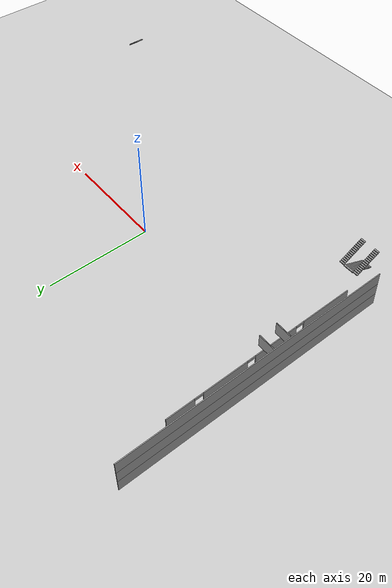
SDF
<sdf version="1.7">
 <world name="default">
  <model name="ground_plane">
   <static>1</static>
   <link name="link">
    <collision name="collision">
     <geometry><plane><normal>0 0 1</normal><size>100 100</size></plane></geometry>
     <surface><friction><ode><mu>100</mu><mu2>50</mu2></ode></friction></surface>
    </collision>
    <visual name="visual">
     <cast_shadows>0</cast_shadows>
     <geometry><plane><normal>0 0 1</normal><size>100 100</size></plane></geometry>
     <material>
      <script><uri>file://media/materials/scripts/gazebo.material</uri><name>Gazebo/Grey</name></script>
     </material>
    </visual>
   </link>
  </model>
  <model name="Anselm_Turmeda">
   <pose>-32.7988 -2.37459 0 0 -0 0</pose>
   <link name="Stairs_2">
    <visual name="Stairs_2_Visual_0">
     <pose>80.9114 -29.0014 2.58333 0 -0 -1.5708</pose>
     <geometry><box><size>1.48422 0.217333 0.166667</size></box></geometry>
     <material>
      <script><uri>file://media/materials/scripts/gazebo.material</uri><name>Gazebo/Grey</name></script>
      <ambient>1 1 1 1</ambient>
     </material>
     <meta><layer>1</layer></meta>
    </visual>
    <collision name="Stairs_2_Collision_0">
     <geometry><box><size>1.48422 0.217333 0.166667</size></box></geometry>
     <pose>80.9114 -29.0014 2.58333 0 -0 -1.5708</pose>
    </collision>
    <visual name="Stairs_2_Visual_1">
     <pose>80.694 -29.0014 2.75 0 -0 -1.5708</pose>
     <geometry><box><size>1.48422 0.217333 0.166667</size></box></geometry>
     <material>
      <script><uri>file://media/materials/scripts/gazebo.material</uri><name>Gazebo/Grey</name></script>
      <ambient>1 1 1 1</ambient>
     </material>
     <meta><layer>1</layer></meta>
    </visual>
    <collision name="Stairs_2_Collision_1">
     <geometry><box><size>1.48422 0.217333 0.166667</size></box></geometry>
     <pose>80.694 -29.0014 2.75 0 -0 -1.5708</pose>
    </collision>
    <visual name="Stairs_2_Visual_2">
     <pose>80.4767 -29.0014 2.91667 0 -0 -1.5708</pose>
     <geometry><box><size>1.48422 0.217333 0.166667</size></box></geometry>
     <material>
      <script><uri>file://media/materials/scripts/gazebo.material</uri><name>Gazebo/Grey</name></script>
      <ambient>1 1 1 1</ambient>
     </material>
     <meta><layer>1</layer></meta>
    </visual>
    <collision name="Stairs_2_Collision_2">
     <geometry><box><size>1.48422 0.217333 0.166667</size></box></geometry>
     <pose>80.4767 -29.0014 2.91667 0 -0 -1.5708</pose>
    </collision>
    <visual name="Stairs_2_Visual_3">
     <pose>80.2594 -29.0014 3.08333 0 -0 -1.5708</pose>
     <geometry><box><size>1.48422 0.217333 0.166667</size></box></geometry>
     <material>
      <script><uri>file://media/materials/scripts/gazebo.material</uri><name>Gazebo/Grey</name></script>
      <ambient>1 1 1 1</ambient>
     </material>
     <meta><layer>1</layer></meta>
    </visual>
    <collision name="Stairs_2_Collision_3">
     <geometry><box><size>1.48422 0.217333 0.166667</size></box></geometry>
     <pose>80.2594 -29.0014 3.08333 0 -0 -1.5708</pose>
    </collision>
    <visual name="Stairs_2_Visual_4">
     <pose>80.042 -29.0014 3.25 0 -0 -1.5708</pose>
     <geometry><box><size>1.48422 0.217333 0.166667</size></box></geometry>
     <material>
      <script><uri>file://media/materials/scripts/gazebo.material</uri><name>Gazebo/Grey</name></script>
      <ambient>1 1 1 1</ambient>
     </material>
     <meta><layer>1</layer></meta>
    </visual>
    <collision name="Stairs_2_Collision_4">
     <geometry><box><size>1.48422 0.217333 0.166667</size></box></geometry>
     <pose>80.042 -29.0014 3.25 0 -0 -1.5708</pose>
    </collision>
    <visual name="Stairs_2_Visual_5">
     <pose>79.8247 -29.0014 3.41667 0 -0 -1.5708</pose>
     <geometry><box><size>1.48422 0.217333 0.166667</size></box></geometry>
     <material>
      <script><uri>file://media/materials/scripts/gazebo.material</uri><name>Gazebo/Grey</name></script>
      <ambient>1 1 1 1</ambient>
     </material>
     <meta><layer>1</layer></meta>
    </visual>
    <collision name="Stairs_2_Collision_5">
     <geometry><box><size>1.48422 0.217333 0.166667</size></box></geometry>
     <pose>79.8247 -29.0014 3.41667 0 -0 -1.5708</pose>
    </collision>
    <visual name="Stairs_2_Visual_6">
     <pose>79.6074 -29.0014 3.58333 0 -0 -1.5708</pose>
     <geometry><box><size>1.48422 0.217333 0.166667</size></box></geometry>
     <material>
      <script><uri>file://media/materials/scripts/gazebo.material</uri><name>Gazebo/Grey</name></script>
      <ambient>1 1 1 1</ambient>
     </material>
     <meta><layer>1</layer></meta>
    </visual>
    <collision name="Stairs_2_Collision_6">
     <geometry><box><size>1.48422 0.217333 0.166667</size></box></geometry>
     <pose>79.6074 -29.0014 3.58333 0 -0 -1.5708</pose>
    </collision>
    <visual name="Stairs_2_Visual_7">
     <pose>79.39 -29.0014 3.75 0 -0 -1.5708</pose>
     <geometry><box><size>1.48422 0.217333 0.166667</size></box></geometry>
     <material>
      <script><uri>file://media/materials/scripts/gazebo.material</uri><name>Gazebo/Grey</name></script>
      <ambient>1 1 1 1</ambient>
     </material>
     <meta><layer>1</layer></meta>
    </visual>
    <collision name="Stairs_2_Collision_7">
     <geometry><box><size>1.48422 0.217333 0.166667</size></box></geometry>
     <pose>79.39 -29.0014 3.75 0 -0 -1.5708</pose>
    </collision>
    <visual name="Stairs_2_Visual_8">
     <pose>79.1727 -29.0014 3.91667 0 -0 -1.5708</pose>
     <geometry><box><size>1.48422 0.217333 0.166667</size></box></geometry>
     <material>
      <script><uri>file://media/materials/scripts/gazebo.material</uri><name>Gazebo/Grey</name></script>
      <ambient>1 1 1 1</ambient>
     </material>
     <meta><layer>1</layer></meta>
    </visual>
    <collision name="Stairs_2_Collision_8">
     <geometry><box><size>1.48422 0.217333 0.166667</size></box></geometry>
     <pose>79.1727 -29.0014 3.91667 0 -0 -1.5708</pose>
    </collision>
    <visual name="Stairs_2_Visual_9">
     <pose>78.9554 -29.0014 4.08333 0 -0 -1.5708</pose>
     <geometry><box><size>1.48422 0.217333 0.166667</size></box></geometry>
     <material>
      <script><uri>file://media/materials/scripts/gazebo.material</uri><name>Gazebo/Grey</name></script>
      <ambient>1 1 1 1</ambient>
     </material>
     <meta><layer>1</layer></meta>
    </visual>
    <collision name="Stairs_2_Collision_9">
     <geometry><box><size>1.48422 0.217333 0.166667</size></box></geometry>
     <pose>78.9554 -29.0014 4.08333 0 -0 -1.5708</pose>
    </collision>
    <visual name="Stairs_2_Visual_10">
     <pose>78.738 -29.0014 4.25 0 -0 -1.5708</pose>
     <geometry><box><size>1.48422 0.217333 0.166667</size></box></geometry>
     <material>
      <script><uri>file://media/materials/scripts/gazebo.material</uri><name>Gazebo/Grey</name></script>
      <ambient>1 1 1 1</ambient>
     </material>
     <meta><layer>1</layer></meta>
    </visual>
    <collision name="Stairs_2_Collision_10">
     <geometry><box><size>1.48422 0.217333 0.166667</size></box></geometry>
     <pose>78.738 -29.0014 4.25 0 -0 -1.5708</pose>
    </collision>
    <visual name="Stairs_2_Visual_11">
     <pose>78.5207 -29.0014 4.41667 0 -0 -1.5708</pose>
     <geometry><box><size>1.48422 0.217333 0.166667</size></box></geometry>
     <material>
      <script><uri>file://media/materials/scripts/gazebo.material</uri><name>Gazebo/Grey</name></script>
      <ambient>1 1 1 1</ambient>
     </material>
     <meta><layer>1</layer></meta>
    </visual>
    <collision name="Stairs_2_Collision_11">
     <geometry><box><size>1.48422 0.217333 0.166667</size></box></geometry>
     <pose>78.5207 -29.0014 4.41667 0 -0 -1.5708</pose>
    </collision>
    <visual name="Stairs_2_Visual_12">
     <pose>78.3034 -29.0014 4.58333 0 -0 -1.5708</pose>
     <geometry><box><size>1.48422 0.217333 0.166667</size></box></geometry>
     <material>
      <script><uri>file://media/materials/scripts/gazebo.material</uri><name>Gazebo/Grey</name></script>
      <ambient>1 1 1 1</ambient>
     </material>
     <meta><layer>1</layer></meta>
    </visual>
    <collision name="Stairs_2_Collision_12">
     <geometry><box><size>1.48422 0.217333 0.166667</size></box></geometry>
     <pose>78.3034 -29.0014 4.58333 0 -0 -1.5708</pose>
    </collision>
    <visual name="Stairs_2_Visual_13">
     <pose>78.086 -29.0014 4.75 0 -0 -1.5708</pose>
     <geometry><box><size>1.48422 0.217333 0.166667</size></box></geometry>
     <material>
      <script><uri>file://media/materials/scripts/gazebo.material</uri><name>Gazebo/Grey</name></script>
      <ambient>1 1 1 1</ambient>
     </material>
     <meta><layer>1</layer></meta>
    </visual>
    <collision name="Stairs_2_Collision_13">
     <geometry><box><size>1.48422 0.217333 0.166667</size></box></geometry>
     <pose>78.086 -29.0014 4.75 0 -0 -1.5708</pose>
    </collision>
    <visual name="Stairs_2_Visual_14">
     <pose>77.8687 -29.0014 4.91667 0 -0 -1.5708</pose>
     <geometry><box><size>1.48422 0.217333 0.166667</size></box></geometry>
     <material>
      <script><uri>file://media/materials/scripts/gazebo.material</uri><name>Gazebo/Grey</name></script>
      <ambient>1 1 1 1</ambient>
     </material>
     <meta><layer>1</layer></meta>
    </visual>
    <collision name="Stairs_2_Collision_14">
     <geometry><box><size>1.48422 0.217333 0.166667</size></box></geometry>
     <pose>77.8687 -29.0014 4.91667 0 -0 -1.5708</pose>
    </collision>
   </link>
   <link name="Stairs_5">
    <visual name="Stairs_5_Visual_0">
     <pose>2.14597 -23.0586 0.083333 0 -0 -3.14159</pose>
     <geometry><box><size>2.06288 0.339077 0.166667</size></box></geometry>
     <material>
      <script><uri>file://media/materials/scripts/gazebo.material</uri><name>Gazebo/Grey</name></script>
      <ambient>1 1 1 1</ambient>
     </material>
     <meta><layer>0</layer></meta>
    </visual>
    <collision name="Stairs_5_Collision_0">
     <geometry><box><size>2.06288 0.339077 0.166667</size></box></geometry>
     <pose>2.14597 -23.0586 0.083333 0 -0 -3.14159</pose>
    </collision>
    <visual name="Stairs_5_Visual_1">
     <pose>2.14597 -22.7195 0.25 0 -0 -3.14159</pose>
     <geometry><box><size>2.06288 0.339077 0.166667</size></box></geometry>
     <material>
      <script><uri>file://media/materials/scripts/gazebo.material</uri><name>Gazebo/Grey</name></script>
      <ambient>1 1 1 1</ambient>
     </material>
     <meta><layer>0</layer></meta>
    </visual>
    <collision name="Stairs_5_Collision_1">
     <geometry><box><size>2.06288 0.339077 0.166667</size></box></geometry>
     <pose>2.14597 -22.7195 0.25 0 -0 -3.14159</pose>
    </collision>
    <visual name="Stairs_5_Visual_2">
     <pose>2.14597 -22.3804 0.416667 0 -0 -3.14159</pose>
     <geometry><box><size>2.06288 0.339077 0.166667</size></box></geometry>
     <material>
      <script><uri>file://media/materials/scripts/gazebo.material</uri><name>Gazebo/Grey</name></script>
      <ambient>1 1 1 1</ambient>
     </material>
     <meta><layer>0</layer></meta>
    </visual>
    <collision name="Stairs_5_Collision_2">
     <geometry><box><size>2.06288 0.339077 0.166667</size></box></geometry>
     <pose>2.14597 -22.3804 0.416667 0 -0 -3.14159</pose>
    </collision>
    <visual name="Stairs_5_Visual_3">
     <pose>2.14597 -22.0414 0.583333 0 -0 -3.14159</pose>
     <geometry><box><size>2.06288 0.339077 0.166667</size></box></geometry>
     <material>
      <script><uri>file://media/materials/scripts/gazebo.material</uri><name>Gazebo/Grey</name></script>
      <ambient>1 1 1 1</ambient>
     </material>
     <meta><layer>0</layer></meta>
    </visual>
    <collision name="Stairs_5_Collision_3">
     <geometry><box><size>2.06288 0.339077 0.166667</size></box></geometry>
     <pose>2.14597 -22.0414 0.583333 0 -0 -3.14159</pose>
    </collision>
    <visual name="Stairs_5_Visual_4">
     <pose>2.14597 -21.7023 0.75 0 -0 -3.14159</pose>
     <geometry><box><size>2.06288 0.339077 0.166667</size></box></geometry>
     <material>
      <script><uri>file://media/materials/scripts/gazebo.material</uri><name>Gazebo/Grey</name></script>
      <ambient>1 1 1 1</ambient>
     </material>
     <meta><layer>0</layer></meta>
    </visual>
    <collision name="Stairs_5_Collision_4">
     <geometry><box><size>2.06288 0.339077 0.166667</size></box></geometry>
     <pose>2.14597 -21.7023 0.75 0 -0 -3.14159</pose>
    </collision>
    <visual name="Stairs_5_Visual_5">
     <pose>2.14597 -21.3632 0.916667 0 -0 -3.14159</pose>
     <geometry><box><size>2.06288 0.339077 0.166667</size></box></geometry>
     <material>
      <script><uri>file://media/materials/scripts/gazebo.material</uri><name>Gazebo/Grey</name></script>
      <ambient>1 1 1 1</ambient>
     </material>
     <meta><layer>0</layer></meta>
    </visual>
    <collision name="Stairs_5_Collision_5">
     <geometry><box><size>2.06288 0.339077 0.166667</size></box></geometry>
     <pose>2.14597 -21.3632 0.916667 0 -0 -3.14159</pose>
    </collision>
    <visual name="Stairs_5_Visual_6">
     <pose>2.14597 -21.0241 1.08333 0 -0 -3.14159</pose>
     <geometry><box><size>2.06288 0.339077 0.166667</size></box></geometry>
     <material>
      <script><uri>file://media/materials/scripts/gazebo.material</uri><name>Gazebo/Grey</name></script>
      <ambient>1 1 1 1</ambient>
     </material>
     <meta><layer>0</layer></meta>
    </visual>
    <collision name="Stairs_5_Collision_6">
     <geometry><box><size>2.06288 0.339077 0.166667</size></box></geometry>
     <pose>2.14597 -21.0241 1.08333 0 -0 -3.14159</pose>
    </collision>
    <visual name="Stairs_5_Visual_7">
     <pose>2.14597 -20.6851 1.25 0 -0 -3.14159</pose>
     <geometry><box><size>2.06288 0.339077 0.166667</size></box></geometry>
     <material>
      <script><uri>file://media/materials/scripts/gazebo.material</uri><name>Gazebo/Grey</name></script>
      <ambient>1 1 1 1</ambient>
     </material>
     <meta><layer>0</layer></meta>
    </visual>
    <collision name="Stairs_5_Collision_7">
     <geometry><box><size>2.06288 0.339077 0.166667</size></box></geometry>
     <pose>2.14597 -20.6851 1.25 0 -0 -3.14159</pose>
    </collision>
    <visual name="Stairs_5_Visual_8">
     <pose>2.14597 -20.346 1.41667 0 -0 -3.14159</pose>
     <geometry><box><size>2.06288 0.339077 0.166667</size></box></geometry>
     <material>
      <script><uri>file://media/materials/scripts/gazebo.material</uri><name>Gazebo/Grey</name></script>
      <ambient>1 1 1 1</ambient>
     </material>
     <meta><layer>0</layer></meta>
    </visual>
    <collision name="Stairs_5_Collision_8">
     <geometry><box><size>2.06288 0.339077 0.166667</size></box></geometry>
     <pose>2.14597 -20.346 1.41667 0 -0 -3.14159</pose>
    </collision>
    <visual name="Stairs_5_Visual_9">
     <pose>2.14597 -20.0069 1.58333 0 -0 -3.14159</pose>
     <geometry><box><size>2.06288 0.339077 0.166667</size></box></geometry>
     <material>
      <script><uri>file://media/materials/scripts/gazebo.material</uri><name>Gazebo/Grey</name></script>
      <ambient>1 1 1 1</ambient>
     </material>
     <meta><layer>0</layer></meta>
    </visual>
    <collision name="Stairs_5_Collision_9">
     <geometry><box><size>2.06288 0.339077 0.166667</size></box></geometry>
     <pose>2.14597 -20.0069 1.58333 0 -0 -3.14159</pose>
    </collision>
    <visual name="Stairs_5_Visual_10">
     <pose>2.14597 -19.6678 1.75 0 -0 -3.14159</pose>
     <geometry><box><size>2.06288 0.339077 0.166667</size></box></geometry>
     <material>
      <script><uri>file://media/materials/scripts/gazebo.material</uri><name>Gazebo/Grey</name></script>
      <ambient>1 1 1 1</ambient>
     </material>
     <meta><layer>0</layer></meta>
    </visual>
    <collision name="Stairs_5_Collision_10">
     <geometry><box><size>2.06288 0.339077 0.166667</size></box></geometry>
     <pose>2.14597 -19.6678 1.75 0 -0 -3.14159</pose>
    </collision>
    <visual name="Stairs_5_Visual_11">
     <pose>2.14597 -19.3288 1.91667 0 -0 -3.14159</pose>
     <geometry><box><size>2.06288 0.339077 0.166667</size></box></geometry>
     <material>
      <script><uri>file://media/materials/scripts/gazebo.material</uri><name>Gazebo/Grey</name></script>
      <ambient>1 1 1 1</ambient>
     </material>
     <meta><layer>0</layer></meta>
    </visual>
    <collision name="Stairs_5_Collision_11">
     <geometry><box><size>2.06288 0.339077 0.166667</size></box></geometry>
     <pose>2.14597 -19.3288 1.91667 0 -0 -3.14159</pose>
    </collision>
    <visual name="Stairs_5_Visual_12">
     <pose>2.14597 -18.9897 2.08333 0 -0 -3.14159</pose>
     <geometry><box><size>2.06288 0.339077 0.166667</size></box></geometry>
     <material>
      <script><uri>file://media/materials/scripts/gazebo.material</uri><name>Gazebo/Grey</name></script>
      <ambient>1 1 1 1</ambient>
     </material>
     <meta><layer>0</layer></meta>
    </visual>
    <collision name="Stairs_5_Collision_12">
     <geometry><box><size>2.06288 0.339077 0.166667</size></box></geometry>
     <pose>2.14597 -18.9897 2.08333 0 -0 -3.14159</pose>
    </collision>
    <visual name="Stairs_5_Visual_13">
     <pose>2.14597 -18.6506 2.25 0 -0 -3.14159</pose>
     <geometry><box><size>2.06288 0.339077 0.166667</size></box></geometry>
     <material>
      <script><uri>file://media/materials/scripts/gazebo.material</uri><name>Gazebo/Grey</name></script>
      <ambient>1 1 1 1</ambient>
     </material>
     <meta><layer>0</layer></meta>
    </visual>
    <collision name="Stairs_5_Collision_13">
     <geometry><box><size>2.06288 0.339077 0.166667</size></box></geometry>
     <pose>2.14597 -18.6506 2.25 0 -0 -3.14159</pose>
    </collision>
    <visual name="Stairs_5_Visual_14">
     <pose>2.14597 -18.3115 2.41667 0 -0 -3.14159</pose>
     <geometry><box><size>2.06288 0.339077 0.166667</size></box></geometry>
     <material>
      <script><uri>file://media/materials/scripts/gazebo.material</uri><name>Gazebo/Grey</name></script>
      <ambient>1 1 1 1</ambient>
     </material>
     <meta><layer>0</layer></meta>
    </visual>
    <collision name="Stairs_5_Collision_14">
     <geometry><box><size>2.06288 0.339077 0.166667</size></box></geometry>
     <pose>2.14597 -18.3115 2.41667 0 -0 -3.14159</pose>
    </collision>
   </link>
   <link name="Stairs_6">
    <visual name="Stairs_6_Visual_0">
     <pose>3.70173 -18.3144 2.58333 0 -0 0</pose>
     <geometry><box><size>1 0.332372 0.166667</size></box></geometry>
     <material>
      <script><uri>file://media/materials/scripts/gazebo.material</uri><name>Gazebo/Grey</name></script>
      <ambient>1 1 1 1</ambient>
     </material>
     <meta><layer>1</layer></meta>
    </visual>
    <collision name="Stairs_6_Collision_0">
     <geometry><box><size>1 0.332372 0.166667</size></box></geometry>
     <pose>3.70173 -18.3144 2.58333 0 -0 0</pose>
    </collision>
    <visual name="Stairs_6_Visual_1">
     <pose>3.70173 -18.6468 2.75 0 -0 0</pose>
     <geometry><box><size>1 0.332372 0.166667</size></box></geometry>
     <material>
      <script><uri>file://media/materials/scripts/gazebo.material</uri><name>Gazebo/Grey</name></script>
      <ambient>1 1 1 1</ambient>
     </material>
     <meta><layer>1</layer></meta>
    </visual>
    <collision name="Stairs_6_Collision_1">
     <geometry><box><size>1 0.332372 0.166667</size></box></geometry>
     <pose>3.70173 -18.6468 2.75 0 -0 0</pose>
    </collision>
    <visual name="Stairs_6_Visual_2">
     <pose>3.70173 -18.9792 2.91667 0 -0 0</pose>
     <geometry><box><size>1 0.332372 0.166667</size></box></geometry>
     <material>
      <script><uri>file://media/materials/scripts/gazebo.material</uri><name>Gazebo/Grey</name></script>
      <ambient>1 1 1 1</ambient>
     </material>
     <meta><layer>1</layer></meta>
    </visual>
    <collision name="Stairs_6_Collision_2">
     <geometry><box><size>1 0.332372 0.166667</size></box></geometry>
     <pose>3.70173 -18.9792 2.91667 0 -0 0</pose>
    </collision>
    <visual name="Stairs_6_Visual_3">
     <pose>3.70173 -19.3115 3.08333 0 -0 0</pose>
     <geometry><box><size>1 0.332372 0.166667</size></box></geometry>
     <material>
      <script><uri>file://media/materials/scripts/gazebo.material</uri><name>Gazebo/Grey</name></script>
      <ambient>1 1 1 1</ambient>
     </material>
     <meta><layer>1</layer></meta>
    </visual>
    <collision name="Stairs_6_Collision_3">
     <geometry><box><size>1 0.332372 0.166667</size></box></geometry>
     <pose>3.70173 -19.3115 3.08333 0 -0 0</pose>
    </collision>
    <visual name="Stairs_6_Visual_4">
     <pose>3.70173 -19.6439 3.25 0 -0 0</pose>
     <geometry><box><size>1 0.332372 0.166667</size></box></geometry>
     <material>
      <script><uri>file://media/materials/scripts/gazebo.material</uri><name>Gazebo/Grey</name></script>
      <ambient>1 1 1 1</ambient>
     </material>
     <meta><layer>1</layer></meta>
    </visual>
    <collision name="Stairs_6_Collision_4">
     <geometry><box><size>1 0.332372 0.166667</size></box></geometry>
     <pose>3.70173 -19.6439 3.25 0 -0 0</pose>
    </collision>
    <visual name="Stairs_6_Visual_5">
     <pose>3.70173 -19.9763 3.41667 0 -0 0</pose>
     <geometry><box><size>1 0.332372 0.166667</size></box></geometry>
     <material>
      <script><uri>file://media/materials/scripts/gazebo.material</uri><name>Gazebo/Grey</name></script>
      <ambient>1 1 1 1</ambient>
     </material>
     <meta><layer>1</layer></meta>
    </visual>
    <collision name="Stairs_6_Collision_5">
     <geometry><box><size>1 0.332372 0.166667</size></box></geometry>
     <pose>3.70173 -19.9763 3.41667 0 -0 0</pose>
    </collision>
    <visual name="Stairs_6_Visual_6">
     <pose>3.70173 -20.3087 3.58333 0 -0 0</pose>
     <geometry><box><size>1 0.332372 0.166667</size></box></geometry>
     <material>
      <script><uri>file://media/materials/scripts/gazebo.material</uri><name>Gazebo/Grey</name></script>
      <ambient>1 1 1 1</ambient>
     </material>
     <meta><layer>1</layer></meta>
    </visual>
    <collision name="Stairs_6_Collision_6">
     <geometry><box><size>1 0.332372 0.166667</size></box></geometry>
     <pose>3.70173 -20.3087 3.58333 0 -0 0</pose>
    </collision>
    <visual name="Stairs_6_Visual_7">
     <pose>3.70173 -20.641 3.75 0 -0 0</pose>
     <geometry><box><size>1 0.332372 0.166667</size></box></geometry>
     <material>
      <script><uri>file://media/materials/scripts/gazebo.material</uri><name>Gazebo/Grey</name></script>
      <ambient>1 1 1 1</ambient>
     </material>
     <meta><layer>1</layer></meta>
    </visual>
    <collision name="Stairs_6_Collision_7">
     <geometry><box><size>1 0.332372 0.166667</size></box></geometry>
     <pose>3.70173 -20.641 3.75 0 -0 0</pose>
    </collision>
    <visual name="Stairs_6_Visual_8">
     <pose>3.70173 -20.9734 3.91667 0 -0 0</pose>
     <geometry><box><size>1 0.332372 0.166667</size></box></geometry>
     <material>
      <script><uri>file://media/materials/scripts/gazebo.material</uri><name>Gazebo/Grey</name></script>
      <ambient>1 1 1 1</ambient>
     </material>
     <meta><layer>1</layer></meta>
    </visual>
    <collision name="Stairs_6_Collision_8">
     <geometry><box><size>1 0.332372 0.166667</size></box></geometry>
     <pose>3.70173 -20.9734 3.91667 0 -0 0</pose>
    </collision>
    <visual name="Stairs_6_Visual_9">
     <pose>3.70173 -21.3058 4.08333 0 -0 0</pose>
     <geometry><box><size>1 0.332372 0.166667</size></box></geometry>
     <material>
      <script><uri>file://media/materials/scripts/gazebo.material</uri><name>Gazebo/Grey</name></script>
      <ambient>1 1 1 1</ambient>
     </material>
     <meta><layer>1</layer></meta>
    </visual>
    <collision name="Stairs_6_Collision_9">
     <geometry><box><size>1 0.332372 0.166667</size></box></geometry>
     <pose>3.70173 -21.3058 4.08333 0 -0 0</pose>
    </collision>
    <visual name="Stairs_6_Visual_10">
     <pose>3.70173 -21.6381 4.25 0 -0 0</pose>
     <geometry><box><size>1 0.332372 0.166667</size></box></geometry>
     <material>
      <script><uri>file://media/materials/scripts/gazebo.material</uri><name>Gazebo/Grey</name></script>
      <ambient>1 1 1 1</ambient>
     </material>
     <meta><layer>1</layer></meta>
    </visual>
    <collision name="Stairs_6_Collision_10">
     <geometry><box><size>1 0.332372 0.166667</size></box></geometry>
     <pose>3.70173 -21.6381 4.25 0 -0 0</pose>
    </collision>
    <visual name="Stairs_6_Visual_11">
     <pose>3.70173 -21.9705 4.41667 0 -0 0</pose>
     <geometry><box><size>1 0.332372 0.166667</size></box></geometry>
     <material>
      <script><uri>file://media/materials/scripts/gazebo.material</uri><name>Gazebo/Grey</name></script>
      <ambient>1 1 1 1</ambient>
     </material>
     <meta><layer>1</layer></meta>
    </visual>
    <collision name="Stairs_6_Collision_11">
     <geometry><box><size>1 0.332372 0.166667</size></box></geometry>
     <pose>3.70173 -21.9705 4.41667 0 -0 0</pose>
    </collision>
    <visual name="Stairs_6_Visual_12">
     <pose>3.70173 -22.3029 4.58333 0 -0 0</pose>
     <geometry><box><size>1 0.332372 0.166667</size></box></geometry>
     <material>
      <script><uri>file://media/materials/scripts/gazebo.material</uri><name>Gazebo/Grey</name></script>
      <ambient>1 1 1 1</ambient>
     </material>
     <meta><layer>1</layer></meta>
    </visual>
    <collision name="Stairs_6_Collision_12">
     <geometry><box><size>1 0.332372 0.166667</size></box></geometry>
     <pose>3.70173 -22.3029 4.58333 0 -0 0</pose>
    </collision>
    <visual name="Stairs_6_Visual_13">
     <pose>3.70173 -22.6353 4.75 0 -0 0</pose>
     <geometry><box><size>1 0.332372 0.166667</size></box></geometry>
     <material>
      <script><uri>file://media/materials/scripts/gazebo.material</uri><name>Gazebo/Grey</name></script>
      <ambient>1 1 1 1</ambient>
     </material>
     <meta><layer>1</layer></meta>
    </visual>
    <collision name="Stairs_6_Collision_13">
     <geometry><box><size>1 0.332372 0.166667</size></box></geometry>
     <pose>3.70173 -22.6353 4.75 0 -0 0</pose>
    </collision>
    <visual name="Stairs_6_Visual_14">
     <pose>3.70173 -22.9676 4.91667 0 -0 0</pose>
     <geometry><box><size>1 0.332372 0.166667</size></box></geometry>
     <material>
      <script><uri>file://media/materials/scripts/gazebo.material</uri><name>Gazebo/Grey</name></script>
      <ambient>1 1 1 1</ambient>
     </material>
     <meta><layer>1</layer></meta>
    </visual>
    <collision name="Stairs_6_Collision_14">
     <geometry><box><size>1 0.332372 0.166667</size></box></geometry>
     <pose>3.70173 -22.9676 4.91667 0 -0 0</pose>
    </collision>
   </link>
   <link name="Stairs_7">
    <visual name="Stairs_7_Visual_0">
     <pose>0.595997 -18.315 2.58333 0 -0 0</pose>
     <geometry><box><size>1 0.333626 0.166667</size></box></geometry>
     <material>
      <script><uri>file://media/materials/scripts/gazebo.material</uri><name>Gazebo/Grey</name></script>
      <ambient>1 1 1 1</ambient>
     </material>
     <meta><layer>1</layer></meta>
    </visual>
    <collision name="Stairs_7_Collision_0">
     <geometry><box><size>1 0.333626 0.166667</size></box></geometry>
     <pose>0.595997 -18.315 2.58333 0 -0 0</pose>
    </collision>
    <visual name="Stairs_7_Visual_1">
     <pose>0.595997 -18.6487 2.75 0 -0 0</pose>
     <geometry><box><size>1 0.333626 0.166667</size></box></geometry>
     <material>
      <script><uri>file://media/materials/scripts/gazebo.material</uri><name>Gazebo/Grey</name></script>
      <ambient>1 1 1 1</ambient>
     </material>
     <meta><layer>1</layer></meta>
    </visual>
    <collision name="Stairs_7_Collision_1">
     <geometry><box><size>1 0.333626 0.166667</size></box></geometry>
     <pose>0.595997 -18.6487 2.75 0 -0 0</pose>
    </collision>
    <visual name="Stairs_7_Visual_2">
     <pose>0.595997 -18.9823 2.91667 0 -0 0</pose>
     <geometry><box><size>1 0.333626 0.166667</size></box></geometry>
     <material>
      <script><uri>file://media/materials/scripts/gazebo.material</uri><name>Gazebo/Grey</name></script>
      <ambient>1 1 1 1</ambient>
     </material>
     <meta><layer>1</layer></meta>
    </visual>
    <collision name="Stairs_7_Collision_2">
     <geometry><box><size>1 0.333626 0.166667</size></box></geometry>
     <pose>0.595997 -18.9823 2.91667 0 -0 0</pose>
    </collision>
    <visual name="Stairs_7_Visual_3">
     <pose>0.595997 -19.3159 3.08333 0 -0 0</pose>
     <geometry><box><size>1 0.333626 0.166667</size></box></geometry>
     <material>
      <script><uri>file://media/materials/scripts/gazebo.material</uri><name>Gazebo/Grey</name></script>
      <ambient>1 1 1 1</ambient>
     </material>
     <meta><layer>1</layer></meta>
    </visual>
    <collision name="Stairs_7_Collision_3">
     <geometry><box><size>1 0.333626 0.166667</size></box></geometry>
     <pose>0.595997 -19.3159 3.08333 0 -0 0</pose>
    </collision>
    <visual name="Stairs_7_Visual_4">
     <pose>0.595997 -19.6495 3.25 0 -0 0</pose>
     <geometry><box><size>1 0.333626 0.166667</size></box></geometry>
     <material>
      <script><uri>file://media/materials/scripts/gazebo.material</uri><name>Gazebo/Grey</name></script>
      <ambient>1 1 1 1</ambient>
     </material>
     <meta><layer>1</layer></meta>
    </visual>
    <collision name="Stairs_7_Collision_4">
     <geometry><box><size>1 0.333626 0.166667</size></box></geometry>
     <pose>0.595997 -19.6495 3.25 0 -0 0</pose>
    </collision>
    <visual name="Stairs_7_Visual_5">
     <pose>0.595997 -19.9832 3.41667 0 -0 0</pose>
     <geometry><box><size>1 0.333626 0.166667</size></box></geometry>
     <material>
      <script><uri>file://media/materials/scripts/gazebo.material</uri><name>Gazebo/Grey</name></script>
      <ambient>1 1 1 1</ambient>
     </material>
     <meta><layer>1</layer></meta>
    </visual>
    <collision name="Stairs_7_Collision_5">
     <geometry><box><size>1 0.333626 0.166667</size></box></geometry>
     <pose>0.595997 -19.9832 3.41667 0 -0 0</pose>
    </collision>
    <visual name="Stairs_7_Visual_6">
     <pose>0.595997 -20.3168 3.58333 0 -0 0</pose>
     <geometry><box><size>1 0.333626 0.166667</size></box></geometry>
     <material>
      <script><uri>file://media/materials/scripts/gazebo.material</uri><name>Gazebo/Grey</name></script>
      <ambient>1 1 1 1</ambient>
     </material>
     <meta><layer>1</layer></meta>
    </visual>
    <collision name="Stairs_7_Collision_6">
     <geometry><box><size>1 0.333626 0.166667</size></box></geometry>
     <pose>0.595997 -20.3168 3.58333 0 -0 0</pose>
    </collision>
    <visual name="Stairs_7_Visual_7">
     <pose>0.595997 -20.6504 3.75 0 -0 0</pose>
     <geometry><box><size>1 0.333626 0.166667</size></box></geometry>
     <material>
      <script><uri>file://media/materials/scripts/gazebo.material</uri><name>Gazebo/Grey</name></script>
      <ambient>1 1 1 1</ambient>
     </material>
     <meta><layer>1</layer></meta>
    </visual>
    <collision name="Stairs_7_Collision_7">
     <geometry><box><size>1 0.333626 0.166667</size></box></geometry>
     <pose>0.595997 -20.6504 3.75 0 -0 0</pose>
    </collision>
    <visual name="Stairs_7_Visual_8">
     <pose>0.595997 -20.9841 3.91667 0 -0 0</pose>
     <geometry><box><size>1 0.333626 0.166667</size></box></geometry>
     <material>
      <script><uri>file://media/materials/scripts/gazebo.material</uri><name>Gazebo/Grey</name></script>
      <ambient>1 1 1 1</ambient>
     </material>
     <meta><layer>1</layer></meta>
    </visual>
    <collision name="Stairs_7_Collision_8">
     <geometry><box><size>1 0.333626 0.166667</size></box></geometry>
     <pose>0.595997 -20.9841 3.91667 0 -0 0</pose>
    </collision>
    <visual name="Stairs_7_Visual_9">
     <pose>0.595997 -21.3177 4.08333 0 -0 0</pose>
     <geometry><box><size>1 0.333626 0.166667</size></box></geometry>
     <material>
      <script><uri>file://media/materials/scripts/gazebo.material</uri><name>Gazebo/Grey</name></script>
      <ambient>1 1 1 1</ambient>
     </material>
     <meta><layer>1</layer></meta>
    </visual>
    <collision name="Stairs_7_Collision_9">
     <geometry><box><size>1 0.333626 0.166667</size></box></geometry>
     <pose>0.595997 -21.3177 4.08333 0 -0 0</pose>
    </collision>
    <visual name="Stairs_7_Visual_10">
     <pose>0.595997 -21.6513 4.25 0 -0 0</pose>
     <geometry><box><size>1 0.333626 0.166667</size></box></geometry>
     <material>
      <script><uri>file://media/materials/scripts/gazebo.material</uri><name>Gazebo/Grey</name></script>
      <ambient>1 1 1 1</ambient>
     </material>
     <meta><layer>1</layer></meta>
    </visual>
    <collision name="Stairs_7_Collision_10">
     <geometry><box><size>1 0.333626 0.166667</size></box></geometry>
     <pose>0.595997 -21.6513 4.25 0 -0 0</pose>
    </collision>
    <visual name="Stairs_7_Visual_11">
     <pose>0.595997 -21.9849 4.41667 0 -0 0</pose>
     <geometry><box><size>1 0.333626 0.166667</size></box></geometry>
     <material>
      <script><uri>file://media/materials/scripts/gazebo.material</uri><name>Gazebo/Grey</name></script>
      <ambient>1 1 1 1</ambient>
     </material>
     <meta><layer>1</layer></meta>
    </visual>
    <collision name="Stairs_7_Collision_11">
     <geometry><box><size>1 0.333626 0.166667</size></box></geometry>
     <pose>0.595997 -21.9849 4.41667 0 -0 0</pose>
    </collision>
    <visual name="Stairs_7_Visual_12">
     <pose>0.595997 -22.3186 4.58333 0 -0 0</pose>
     <geometry><box><size>1 0.333626 0.166667</size></box></geometry>
     <material>
      <script><uri>file://media/materials/scripts/gazebo.material</uri><name>Gazebo/Grey</name></script>
      <ambient>1 1 1 1</ambient>
     </material>
     <meta><layer>1</layer></meta>
    </visual>
    <collision name="Stairs_7_Collision_12">
     <geometry><box><size>1 0.333626 0.166667</size></box></geometry>
     <pose>0.595997 -22.3186 4.58333 0 -0 0</pose>
    </collision>
    <visual name="Stairs_7_Visual_13">
     <pose>0.595997 -22.6522 4.75 0 -0 0</pose>
     <geometry><box><size>1 0.333626 0.166667</size></box></geometry>
     <material>
      <script><uri>file://media/materials/scripts/gazebo.material</uri><name>Gazebo/Grey</name></script>
      <ambient>1 1 1 1</ambient>
     </material>
     <meta><layer>1</layer></meta>
    </visual>
    <collision name="Stairs_7_Collision_13">
     <geometry><box><size>1 0.333626 0.166667</size></box></geometry>
     <pose>0.595997 -22.6522 4.75 0 -0 0</pose>
    </collision>
    <visual name="Stairs_7_Visual_14">
     <pose>0.595997 -22.9858 4.91667 0 -0 0</pose>
     <geometry><box><size>1 0.333626 0.166667</size></box></geometry>
     <material>
      <script><uri>file://media/materials/scripts/gazebo.material</uri><name>Gazebo/Grey</name></script>
      <ambient>1 1 1 1</ambient>
     </material>
     <meta><layer>1</layer></meta>
    </visual>
    <collision name="Stairs_7_Collision_14">
     <geometry><box><size>1 0.333626 0.166667</size></box></geometry>
     <pose>0.595997 -22.9858 4.91667 0 -0 0</pose>
    </collision>
   </link>
   <link name="Wall_12">
    <collision name="Wall_12_Collision">
     <geometry><box><size>51.5 0.15 2.5</size></box></geometry>
     <pose>0 0 1.25 0 -0 0</pose>
    </collision>
    <visual name="Wall_12_Visual">
     <pose>0 0 1.25 0 -0 0</pose>
     <geometry><box><size>51.5 0.15 2.5</size></box></geometry>
     <material>
      <script><uri>file://media/materials/scripts/gazebo.material</uri><name>Gazebo/Grey</name></script>
      <ambient>1 1 1 1</ambient>
     </material>
     <meta><layer>0</layer></meta>
    </visual>
    <pose>-4.31376 8.03718 0 0 -0 -1.5708</pose>
   </link>
   <link name="Wall_325">
    <collision name="Wall_325_Collision">
     <geometry><box><size>3.25 0.15 2.5</size></box></geometry>
     <pose>0 0 1.25 0 -0 0</pose>
    </collision>
    <visual name="Wall_325_Visual">
     <pose>0 0 1.25 0 -0 0</pose>
     <geometry><box><size>3.25 0.15 2.5</size></box></geometry>
     <material>
      <script><uri>file://media/materials/scripts/gazebo.material</uri><name>Gazebo/Grey</name></script>
      <ambient>1 1 1 1</ambient>
     </material>
     <meta><layer>2</layer></meta>
    </visual>
    <pose>-2.59737 1.74191 5 0 -0 3.14159</pose>
   </link>
   <link name="Wall_327">
    <collision name="Wall_327_Collision">
     <geometry><box><size>3.25 0.15 2.5</size></box></geometry>
     <pose>0 0 1.25 0 -0 0</pose>
    </collision>
    <visual name="Wall_327_Visual">
     <pose>0 0 1.25 0 -0 0</pose>
     <geometry><box><size>3.25 0.15 2.5</size></box></geometry>
     <material>
      <script><uri>file://media/materials/scripts/gazebo.material</uri><name>Gazebo/Grey</name></script>
      <ambient>1 1 1 1</ambient>
     </material>
     <meta><layer>2</layer></meta>
    </visual>
    <pose>-2.6624 5.25401 5 0 -0 3.14159</pose>
   </link>
   <link name="Wall_37">
    <collision name="Wall_37_Collision">
     <geometry><box><size>51.5 0.15 2.5</size></box></geometry>
     <pose>0 0 1.25 0 -0 0</pose>
    </collision>
    <visual name="Wall_37_Visual">
     <pose>0 0 1.25 0 -0 0</pose>
     <geometry><box><size>51.5 0.15 2.5</size></box></geometry>
     <material>
      <script><uri>file://media/materials/scripts/gazebo.material</uri><name>Gazebo/Grey</name></script>
      <ambient>1 1 1 1</ambient>
     </material>
     <meta><layer>1</layer></meta>
    </visual>
    <pose>-4.31376 8.03718 2.5 0 -0 -1.5708</pose>
   </link>
   <link name="Wall_499">
    <pose>-1.02252 4.21361 0 0 -0 1.5708</pose>
    <visual name="Wall_499_Visual_0">
     <pose>-13.8342 0 1.25 0 -0 0</pose>
     <geometry><box><size>10.0816 0.15 2.5</size></box></geometry>
     <material>
      <script><uri>file://media/materials/scripts/gazebo.material</uri><name>Gazebo/Grey</name></script>
      <ambient>1 1 1 1</ambient>
     </material>
     <meta><layer>0</layer></meta>
    </visual>
    <collision name="Wall_499_Collision_0">
     <geometry><box><size>10.0816 0.15 2.5</size></box></geometry>
     <pose>-13.8342 0 1.25 0 -0 0</pose>
    </collision>
    <visual name="Wall_499_Visual_1">
     <pose>-2.83012 0 1.25 0 -0 0</pose>
     <geometry><box><size>8.70374 0.15 2.5</size></box></geometry>
     <material>
      <script><uri>file://media/materials/scripts/gazebo.material</uri><name>Gazebo/Grey</name></script>
      <ambient>1 1 1 1</ambient>
     </material>
     <meta><layer>0</layer></meta>
    </visual>
    <collision name="Wall_499_Collision_1">
     <geometry><box><size>8.70374 0.15 2.5</size></box></geometry>
     <pose>-2.83012 0 1.25 0 -0 0</pose>
    </collision>
    <visual name="Wall_499_Visual_2">
     <pose>7.50926 0 1.25 0 -0 0</pose>
     <geometry><box><size>8.68757 0.15 2.5</size></box></geometry>
     <material>
      <script><uri>file://media/materials/scripts/gazebo.material</uri><name>Gazebo/Grey</name></script>
      <ambient>1 1 1 1</ambient>
     </material>
     <meta><layer>0</layer></meta>
    </visual>
    <collision name="Wall_499_Collision_2">
     <geometry><box><size>8.68757 0.15 2.5</size></box></geometry>
     <pose>7.50926 0 1.25 0 -0 0</pose>
    </collision>
    <visual name="Wall_499_Visual_3">
     <pose>16.2021 0 1.25 0 -0 0</pose>
     <geometry><box><size>5.3459 0.15 2.5</size></box></geometry>
     <material>
      <script><uri>file://media/materials/scripts/gazebo.material</uri><name>Gazebo/Grey</name></script>
      <ambient>1 1 1 1</ambient>
     </material>
     <meta><layer>0</layer></meta>
    </visual>
    <collision name="Wall_499_Collision_3">
     <geometry><box><size>5.3459 0.15 2.5</size></box></geometry>
     <pose>16.2021 0 1.25 0 -0 0</pose>
    </collision>
    <visual name="Wall_499_Visual_4">
     <pose>-7.98769 0 2.25 0 -0 0</pose>
     <geometry><box><size>1.61139 0.15 0.5</size></box></geometry>
     <material>
      <script><uri>file://media/materials/scripts/gazebo.material</uri><name>Gazebo/Grey</name></script>
      <ambient>1 1 1 1</ambient>
     </material>
     <meta><layer>0</layer></meta>
    </visual>
    <collision name="Wall_499_Collision_4">
     <geometry><box><size>1.61139 0.15 0.5</size></box></geometry>
     <pose>-7.98769 0 2.25 0 -0 0</pose>
    </collision>
    <visual name="Wall_499_Visual_5">
     <pose>2.34361 0 2.25 0 -0 0</pose>
     <geometry><box><size>1.64372 0.15 0.5</size></box></geometry>
     <material>
      <script><uri>file://media/materials/scripts/gazebo.material</uri><name>Gazebo/Grey</name></script>
      <ambient>1 1 1 1</ambient>
     </material>
     <meta><layer>0</layer></meta>
    </visual>
    <collision name="Wall_499_Collision_5">
     <geometry><box><size>1.64372 0.15 0.5</size></box></geometry>
     <pose>2.34361 0 2.25 0 -0 0</pose>
    </collision>
    <visual name="Wall_499_Visual_6">
     <pose>12.6911 0 2.25 0 -0 0</pose>
     <geometry><box><size>1.67606 0.15 0.5</size></box></geometry>
     <material>
      <script><uri>file://media/materials/scripts/gazebo.material</uri><name>Gazebo/Grey</name></script>
      <ambient>1 1 1 1</ambient>
     </material>
     <meta><layer>0</layer></meta>
    </visual>
    <collision name="Wall_499_Collision_6">
     <geometry><box><size>1.67606 0.15 0.5</size></box></geometry>
     <pose>12.6911 0 2.25 0 -0 0</pose>
    </collision>
   </link>
   <link name="Wall_59">
    <collision name="Wall_59_Collision">
     <geometry><box><size>51.5 0.15 2.5</size></box></geometry>
     <pose>0 0 1.25 0 -0 0</pose>
    </collision>
    <visual name="Wall_59_Visual">
     <pose>0 0 1.25 0 -0 0</pose>
     <geometry><box><size>51.5 0.15 2.5</size></box></geometry>
     <material>
      <script><uri>file://media/materials/scripts/gazebo.material</uri><name>Gazebo/Grey</name></script>
      <ambient>1 1 1 1</ambient>
     </material>
     <meta><layer>2</layer></meta>
    </visual>
    <pose>-4.31376 8.03718 5 0 -0 -1.5708</pose>
   </link>
   <static>1</static>
  </model>
 </world>
</sdf>
